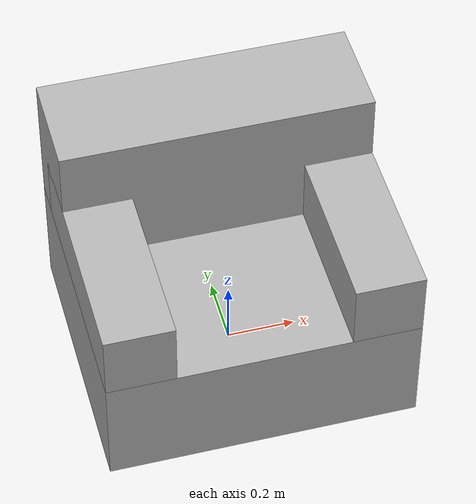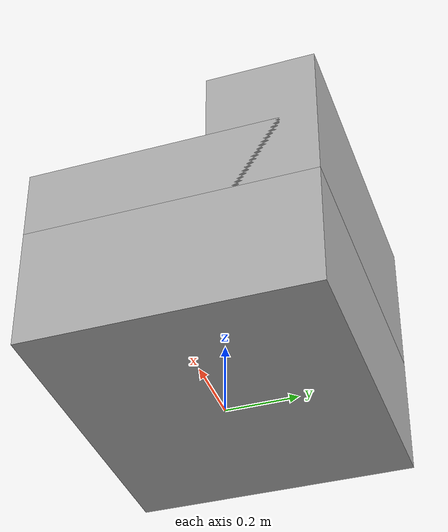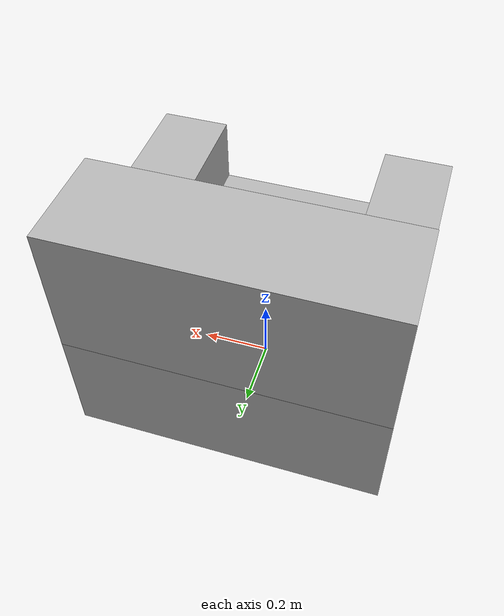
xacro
<?xml version="1.0"?>

<robot name="sofa" xmlns:xacro="http://www.ros.org/wiki/xacro">

<xacro:property name="altura_respaldo" value="0.4" />
<xacro:property name="altura" value="0.35" />
<xacro:property name="ancho" value="0.8" />
<xacro:property name="largo" value="0.9" />

<link name="world" />

<joint name="sofa" type="floating">
  <parent link="world"/>
  <child link="sofa_link"/>
  <origin xyz="0 0 0" rpy="0 0 0" />
</joint>

<link name="sofa_link">
  <visual>
    <geometry>
      <box size="${largo} ${ancho} ${altura}" />
    </geometry>
    <origin rpy="0 0 0" xyz="0 0 ${altura/2}" />
      <material name="Grey">
		<color rgba="0.7 0.7 0.7 1" />
    </material>
  </visual>
  <collision>
    <origin rpy="0 0 0" xyz="0 0 ${altura/2}" />
    <geometry>
      <box size="${largo} ${ancho} ${altura}" />
    </geometry>
  </collision>
  <inertial>
    <origin rpy="0 0 0" xyz="0 0 ${altura/2}" />
    <mass value="5" />
      <inertia ixx="0.1" ixy="0.0" ixz="0.0" iyy="0.1" iyz="0.0" izz="0.1"/>
  </inertial>
</link>

<joint name="respaldo" type="fixed">
  <parent link="sofa_link"/>
  <child link="respaldo_link"/>
  <origin xyz="0 ${(ancho/2)-(0.3/2)} ${altura}" rpy="0 0 0" />
</joint>

<link name="respaldo_link">
  <visual>
    <geometry>
      <box size="${largo} 0.3 ${altura_respaldo}" />
    </geometry>
    <origin rpy="0 0 0" xyz="0 0 ${altura_respaldo/2}" />
      <material name="Grey" />
  </visual>
  <collision>
    <origin rpy="0 0 0" xyz="0 0 ${altura_respaldo/2}" />
    <geometry>
      <box size="${largo} 0.3 ${altura_respaldo}" />
    </geometry>
  </collision>
  <inertial>
    <origin rpy="0 0 0" xyz="0 0 ${altura_respaldo/2}" />
    <mass value="1" />
      <inertia ixx="0.1" ixy="0.0" ixz="0.0" iyy="0.1" iyz="0.0" izz="0.1"/>
  </inertial>
</link>

<xacro:macro name="brazo" params="id refx">
<joint name="brazo_${id}" type="fixed">
  <parent link="sofa_link"/>
  <child link="brazo_${id}_link"/>
  <origin xyz="${refx*((largo/2)-(0.2/2))} -${0.1/2} ${altura}" rpy="0 0 0" />
</joint>

<link name="brazo_${id}_link">
  <visual>
    <geometry>
      <box size="0.2 ${ancho-0.1} 0.2" />
    </geometry>
    <origin rpy="0 0 0" xyz="0 0 ${0.2/2}" />
      <material name="Grey" />
  </visual>
  <collision>
    <origin rpy="0 0 0" xyz="0 0 ${0.2/2}" />
    <geometry>
      <box size="0.2 ${ancho-0.1} 0.2" />
    </geometry>
  </collision>
  <inertial>
    <origin rpy="0 0 0" xyz="0 0 ${altura/2}" />
    <mass value="1" />
      <inertia ixx="0.1" ixy="0.0" ixz="0.0" iyy="0.1" iyz="0.0" izz="0.1"/>
  </inertial>
</link>
</xacro:macro>

<xacro:brazo id="1" refx="1" />
<xacro:brazo id="2" refx="-1" />

<gazebo reference="sofa_link">
  <material>Gazebo/Grey</material>
  <mu1>1</mu1>
  <mu2>1</mu2>
  <selfCollide>true</selfCollide>
  <turnGravityOff>false</turnGravityOff>
</gazebo>

<gazebo reference="respaldo_link">
  <material>Gazebo/Grey</material>
  <mu1>1</mu1>
  <mu2>1</mu2>
  <selfCollide>true</selfCollide>
  <turnGravityOff>false</turnGravityOff>
</gazebo>

<xacro:macro name="gazebo_brazo" params="id">
<gazebo reference="brazo_${id}_link">
  <material>Gazebo/Grey</material>
  <mu1>1</mu1>
  <mu2>1</mu2>
  <selfCollide>true</selfCollide>
  <turnGravityOff>false</turnGravityOff>
</gazebo>
</xacro:macro>

<xacro:gazebo_brazo id="1"/>
<xacro:gazebo_brazo id="2"/>

</robot>
